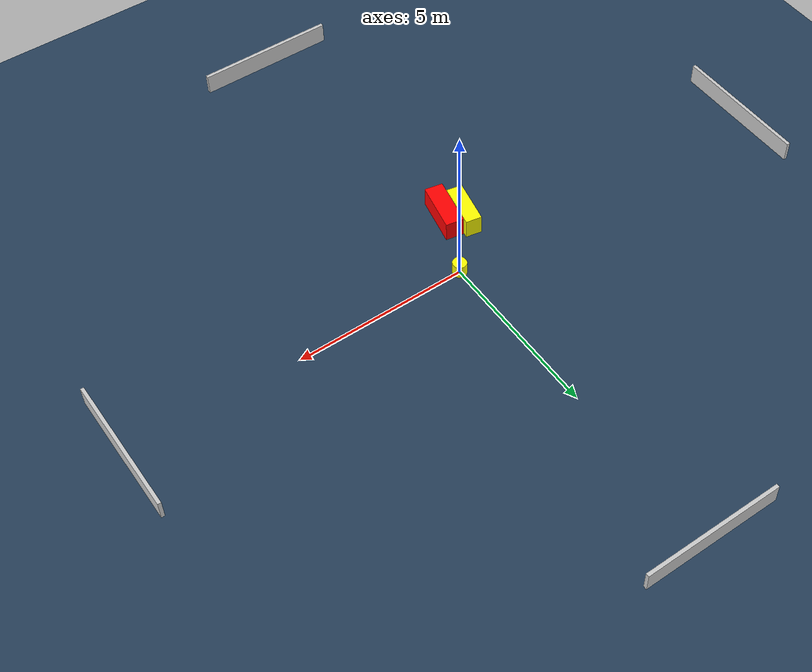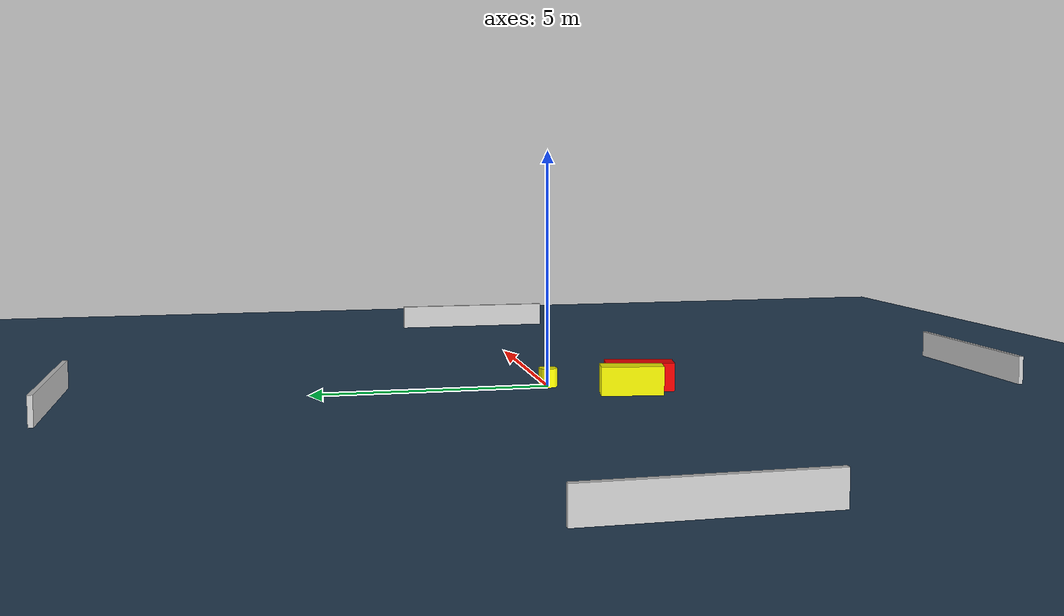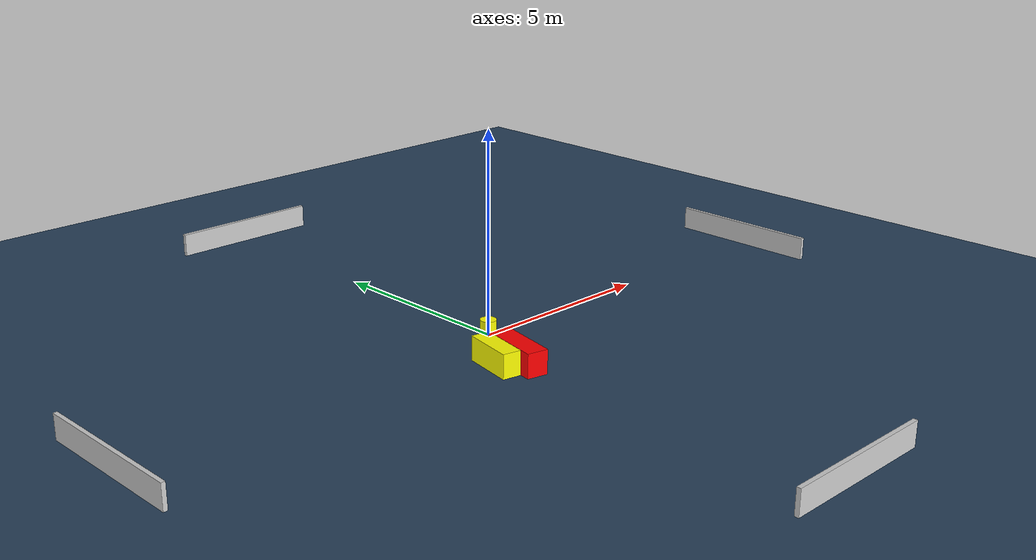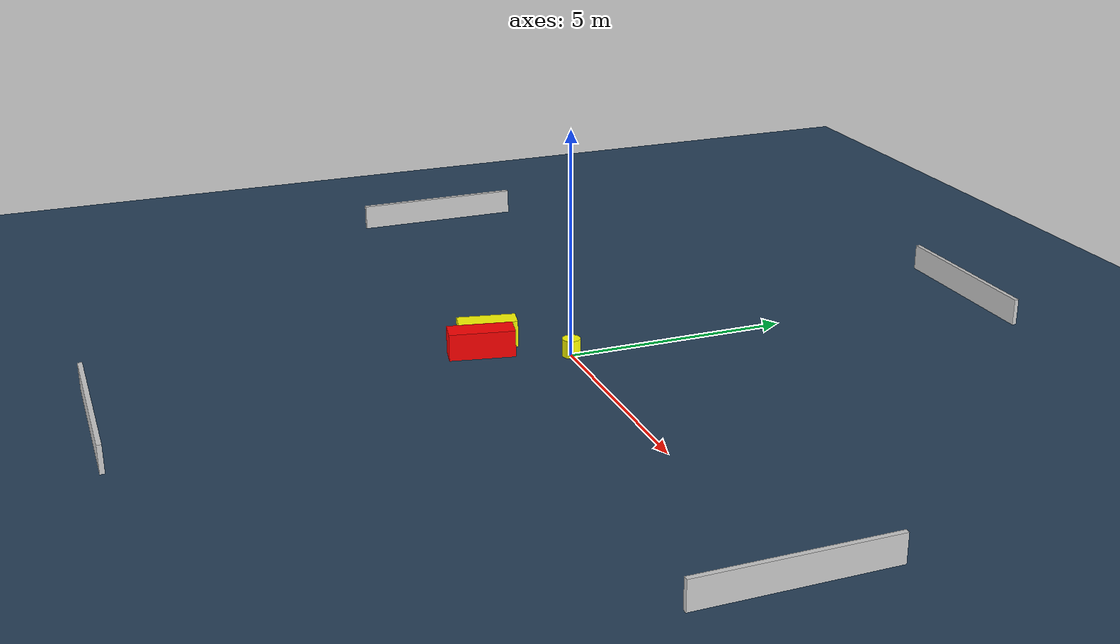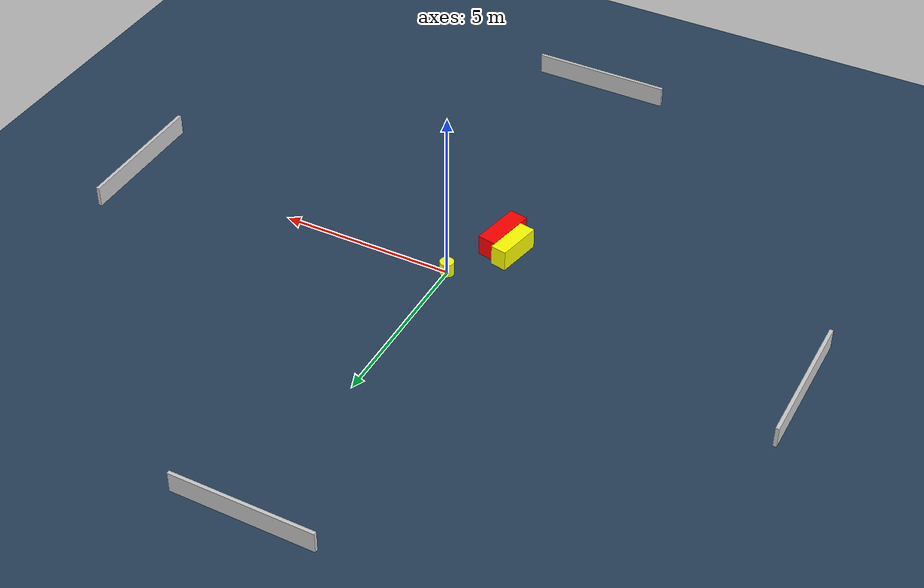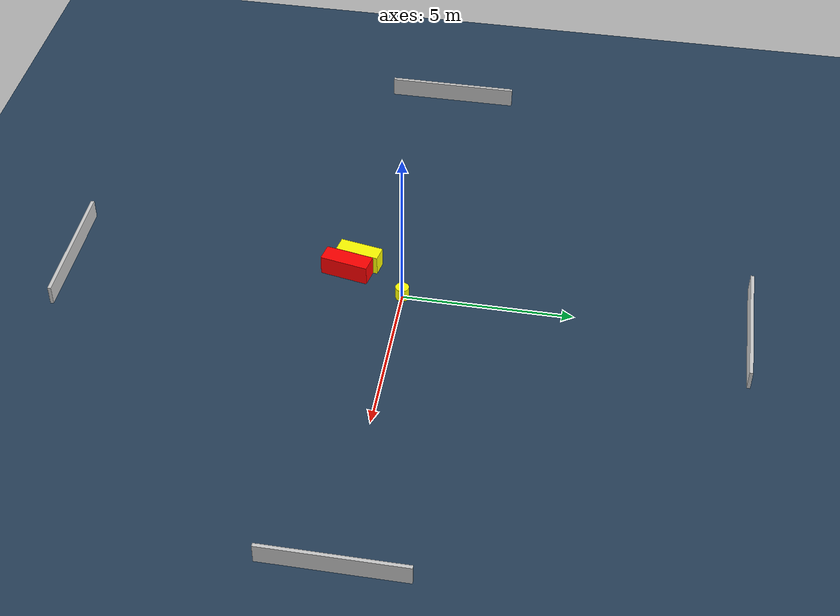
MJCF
<?xml version="1.0" ?>
<mujoco model="generated_environment">
  <option timestep="0.01" integrator="RK4" cone="elliptic"/>
  <default>
    <geom density="1"/>
  </default>
  <asset>
    <texture builtin="gradient" height="3072" name="skybox" rgb1="0.3 0.5 0.7" rgb2="0 0 0" type="skybox" width="512"/>
    <texture builtin="checker" height="300" name="groundplane" rgb1="0.2 0.3 0.4" rgb2="0.1 0.2 0.3" type="2d" width="300"/>
    <material name="groundplane" reflectance="0.2" texrepeat="5 5" texture="groundplane"/>
  </asset>
  <worldbody>
    <light dir="0 0 -1" directional="true" pos="0 0 1.5"/>
    <geom condim="3" friction="0.5 0.005 0.001" material="groundplane" name="floor" pos="0 0 0" size="0 0 0.05" type="plane"/>
    <body name="walls">
      <geom name="wall_1" condim="4" pos="-10.0 0.0 0.3" rgba="0.800000011920929 0.800000011920929 0.800000011920929 1.0" size="0.05 2.0 0.3" type="box"/>
      <geom name="wall_2" condim="4" pos="10.0 0.0 0.3" rgba="0.800000011920929 0.800000011920929 0.800000011920929 1.0" size="0.05 2.0 0.3" type="box"/>
      <geom name="wall_3" condim="4" pos="0.0 -10.0 0.3" rgba="0.800000011920929 0.800000011920929 0.800000011920929 1.0" size="2.0 0.05 0.3" type="box"/>
      <geom name="wall_4" condim="4" pos="0.0 10.0 0.3" rgba="0.800000011920929 0.800000011920929 0.800000011920929 1.0" size="2.0 0.05 0.3" type="box"/>
    </body>
    <body name="robot">
      <joint name="joint_x" type="slide" pos="0 0 0" axis="1 0 0"/>
      <joint name="joint_y" type="slide" pos="0 0 0" axis="0 1 0"/>
      <geom name="robot" type="cylinder" pos="0.0 0.0 0.2" size="0.2 0.2 0.0" mass="5.0" friction="1.0 0.005 0.0001" condim="4" rgba="1.0 1.0 0.0 1.0"/>
    </body>
    <body name="obstacle_1_movable">
      <geom name="obstacle_1_movable" condim="4" pos="-1.2176475400685416 -1.5024008203519834 0.3" euler="0 0 78.8976284634351" friction="0.0 0.005 0.001" rgba="1.0 1.0 0.0 1.0" size="0.6493906552489076 0.2300502345806005 0.3" type="box" mass="0.1"/>
      <joint type="free"/>
    </body>
    <body name="obstacle_2_static">
      <geom name="obstacle_2_static" condim="4" pos="-0.7638693770292754 -1.7943836171178797 0.3" euler="0 0 168.87065651221846" friction="0.0 0.005 0.001" rgba="1.0 0.0 0.0 1.0" size="0.26440752428332825 0.72128326870123 0.3" type="box"/>
    </body>
  </worldbody>
  <actuator>
    <motor name="actuator_x" joint="joint_x" gear="1" ctrlrange="-1 1"/>
    <motor name="actuator_y" joint="joint_y" gear="1" ctrlrange="-1 1"/>
  </actuator>
</mujoco>
